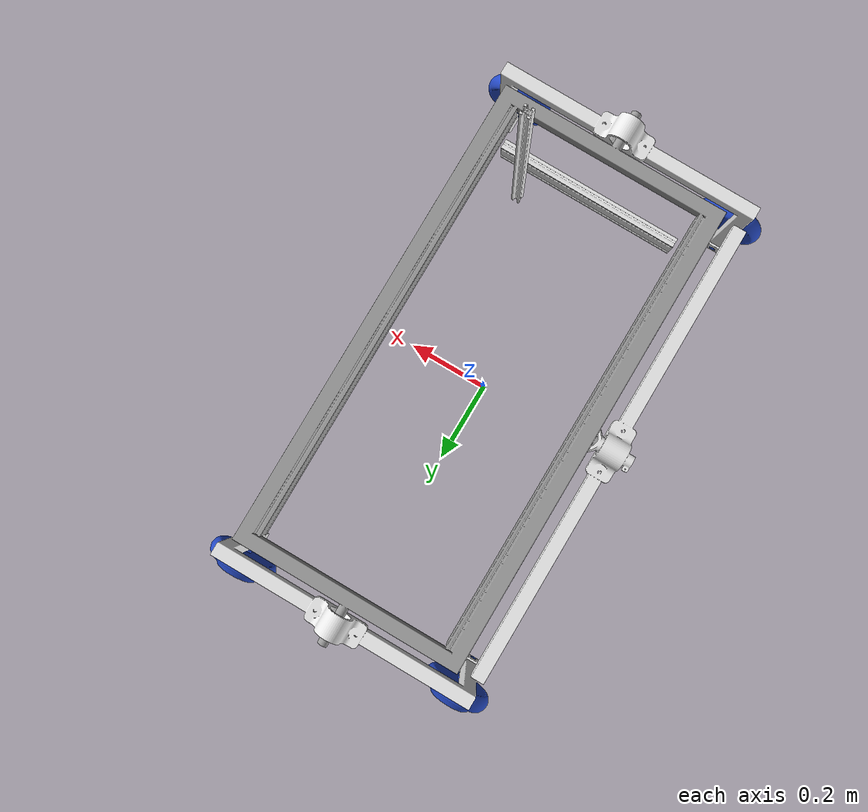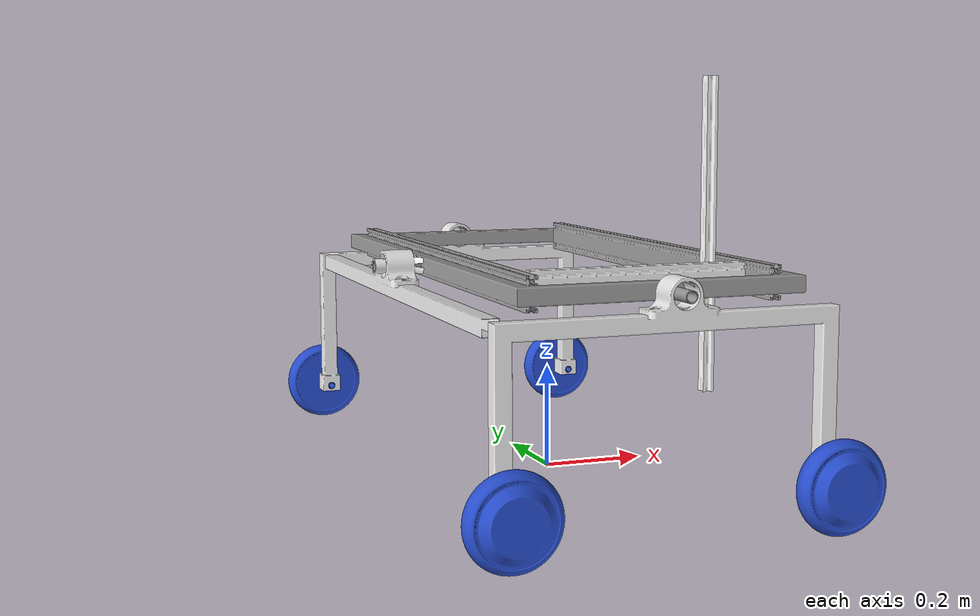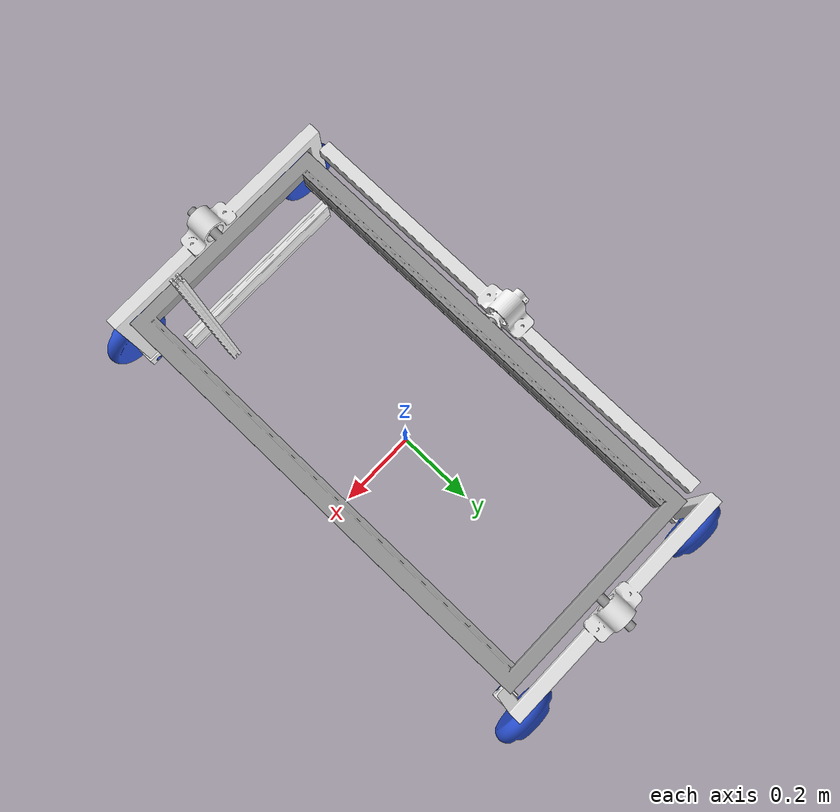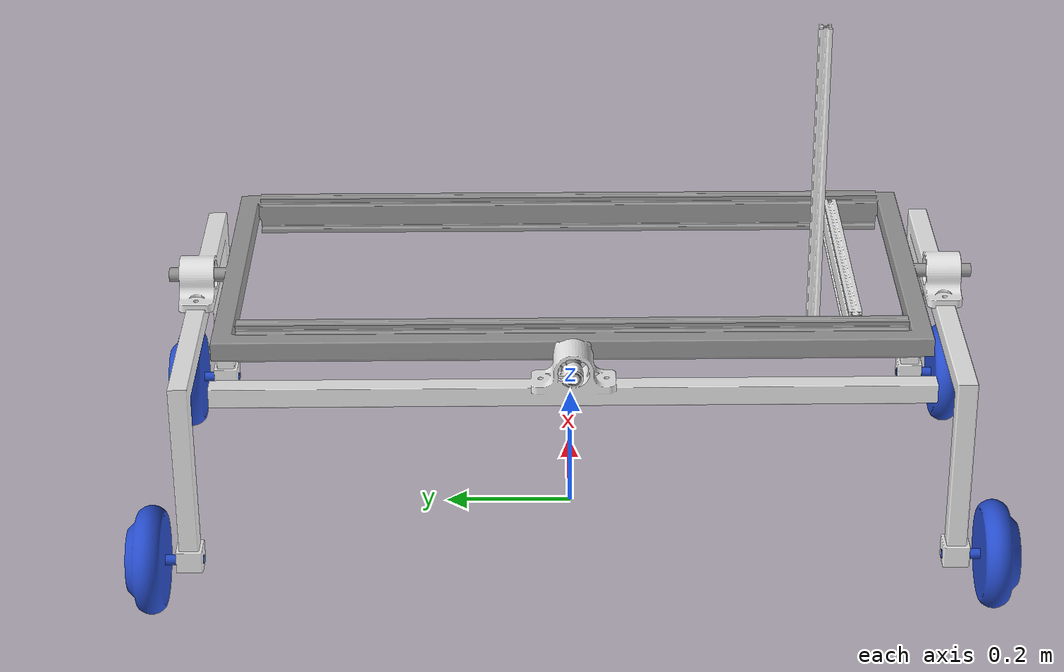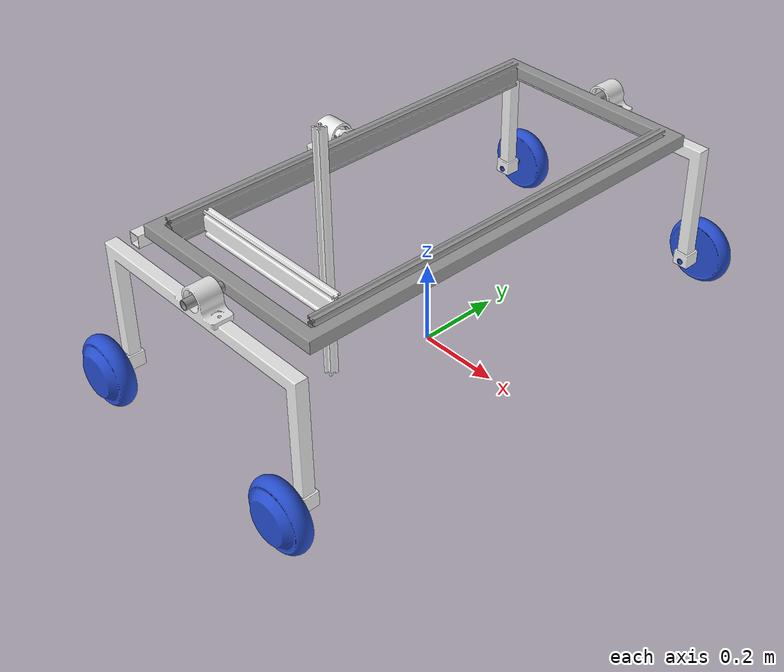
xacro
<?xml version="1.0"?>
<robot xmlns:xacro="http://www.ros.org/wiki/xacro" >

    <xacro:property name="frame_ground_offset" value="0.4125" />

    <xacro:property name="leg_offset_y" value="0.5795" />
    <xacro:property name="leg_offset_z" value="0.03" />

    <xacro:property name="back_bar_offset_x" value="0.305" />
    <xacro:property name="back_bar_offset_z" value="0.045" />

    <xacro:property name="front_wheel_offset_x" value="0.275" />
    <xacro:property name="back_wheel_offset_x" value="0.305" />
    <xacro:property name="wheel_offset_y" value="0.058" />
    <xacro:property name="wheel_offset_z" value="0.300" />

    <xacro:property name="z_axis_offset_x" value="0.025" />
    <xacro:property name="z_axis_offset_z" value="0.35" />

    <xacro:property name="x_axis_travel" value="0.845" />
    <xacro:property name="y_axis_travel" value="0.29" />
    <xacro:property name="z_axis_travel" value="0.25" />

    <xacro:property name="wheel_radius" value="0.0825" />
    <xacro:property name="wheel_width"  value="0.10"   />   <!-- tread width in Y (axle direction) -->

    ``----- LINKS -----

    <link name="base_footprint" />

    <link name="base_link">
        <visual>
            <geometry>
                <mesh filename="package://robot_description/meshes/main_frame.stl" scale="0.001 0.001 0.001" />
            </geometry>
            <origin xyz="0 0 0" rpy="0 0 0" />
            <material name="grey" />
        </visual>

        <collision>
            <origin xyz="0 0 0" rpy="0 0 0" />
            <geometry>
                <box size="0.614 1.338 0.06" />
            </geometry>
        </collision>

        <inertial>
            <origin xyz="0.0 0.0 0.0" rpy="0 0 0"/>
            <mass value="6.54888"/>
            <inertia
                ixx="0.9946" ixy="0.0" ixz="0.0"
                iyy="0.3190" iyz="0.0"
                izz="1.311" />
        </inertial>
    </link>

    <link name="gantry_origin_link"/>

    <link name="left_leg_link">
        <visual>
            <geometry>
                <mesh filename="package://robot_description/meshes/leg.stl" scale="0.001 0.001 0.001"/>
            </geometry>
            <origin xyz="0 0 0" rpy="0 0 0" />
            <material name="white" />
        </visual>

        <collision>
            <origin xyz="0 0 -0.15" rpy="0 0 0" />
            <geometry>
                <box size="0.625 0.054 0.37455" />
            </geometry>
        </collision>

        <inertial>
            <origin xyz="-0.014231 0.0 -0.143044" rpy="0 0 0"/>
            <mass value="2.33849"/>
            <inertia
                ixx="0.03813" ixy="0.0" ixz="0.0"
                iyy="0.1843" iyz="0.0"
                izz="0.1468" />
        </inertial>
    </link>

    <link name="right_leg_link">
        <visual>
            <geometry>
                <mesh filename="package://robot_description/meshes/leg.stl" scale="0.001 0.001 0.001"/>
            </geometry>
            <origin xyz="0 0 0" rpy="0 0 0" />
            <material name="white" />
        </visual>

        <collision>
            <origin xyz="0 0 -0.15" rpy="0 0 0" />
            <geometry>
                <box size="0.625 0.054 0.37455" />
            </geometry>
        </collision>

        <inertial>
            <origin xyz="-0.014231 0.0 -0.143044" rpy="0 0 0"/>
            <mass value="2.33849"/>
            <inertia
                ixx="0.03813" ixy="0.0" ixz="0.0"
                iyy="0.1843" iyz="0.0"
                izz="0.1468" />
        </inertial>
    </link>

    <link name="back_bar_link">
        <visual>
            <geometry>
                <mesh filename="package://robot_description/meshes/back_bar.stl" scale="0.001 0.001 0.001"/>
            </geometry>
            <origin xyz="0 0 0" rpy="0 0 0" />
            <material name="white" />
        </visual>

        <collision>
            <origin xyz="0 0 0.015" rpy="0 0 0" />
            <geometry>
                <box size="0.089 1.160 0.08955" />
            </geometry>
        </collision>

        <inertial>
            <origin xyz="0.0 0.0 0.007051" rpy="0 0 0"/>
            <mass value="1.16448"/>
            <inertia
                ixx="0.1067" ixy="0.0" ixz="0.0"
                iyy="0.0006767" iyz="0.0"
                izz="0.1064" />
        </inertial>
    </link>

    <link name="left_wheel_front_link">
        <visual>
            <geometry>
                <mesh filename="package://robot_description/meshes/motor_wheel.stl" scale="0.001 0.001 0.001"/>
            </geometry>
            <origin xyz="0 0 0" rpy="0 0 0" />
            <material name="blue" />
        </visual>

        <collision>
            <geometry>
                <sphere radius="${wheel_radius}"/>
            </geometry>
            <origin xyz="0 0 0" rpy="0 0 0" />
        </collision>

        <inertial>
            <origin xyz="0.0 -0.003705 0.0" rpy="0 0 0"/>

            <mass value="5.55023"/>

            <inertia
                ixx="0.01495" ixy="0.0" ixz="0.0"
                iyy="0.02667" iyz="0.0"
                izz="0.01495" />
        </inertial>
    </link>

    <link name="left_wheel_back_link">
        <visual>
            <geometry>
                <mesh filename="package://robot_description/meshes/motor_wheel.stl" scale="0.001 0.001 0.001"/>
            </geometry>
            <origin xyz="0 0 0" rpy="0 0 0" />
            <material name="blue" />
        </visual>

        <collision>
            <geometry>
                <sphere radius="${wheel_radius}"/>
            </geometry>
            <origin xyz="0 0 0" rpy="0 0 0" />
        </collision>

        <inertial>
            <origin xyz="0.0 -0.003705 0.0" rpy="0 0 0"/>

            <mass value="5.55023"/>

            <inertia
                ixx="0.01495" ixy="0.0" ixz="0.0"
                iyy="0.02667" iyz="0.0"
                izz="0.01495" />
        </inertial>
    </link>

    <link name="right_wheel_front_link">
        <visual>
            <geometry>
                <mesh filename="package://robot_description/meshes/motor_wheel.stl" scale="0.001 0.001 0.001"/>
            </geometry>
            <origin xyz="0 0 0" rpy="0 0 ${pi}" />
            <material name="blue" />
        </visual>

        <collision>
            <geometry>
                <sphere radius="${wheel_radius}"/>
            </geometry>
            <origin xyz="0 0 0" rpy="0 0 0" />
        </collision>

        <inertial>
            <origin xyz="0.0 0.003705 0.0" rpy="0 0 0"/>

            <mass value="5.55023"/>

            <inertia
                ixx="0.01495" ixy="0.0" ixz="0.0"
                iyy="0.02667" iyz="0.0"
                izz="0.01495" />
        </inertial>
    </link>

    <link name="right_wheel_back_link">
        <visual>
            <geometry>
                <mesh filename="package://robot_description/meshes/motor_wheel.stl" scale="0.001 0.001 0.001"/>
            </geometry>
            <origin xyz="0 0 0" rpy="0 0 ${pi}" />
            <material name="blue" />
        </visual>

        <collision>
            <geometry>
                <sphere radius="${wheel_radius}"/>
            </geometry>
            <origin xyz="0 0 0" rpy="0 0 0" />
        </collision>

        <inertial>
            <origin xyz="0.0 0.003705 0.0" rpy="0 0 0"/>

            <mass value="5.55023"/>

            <inertia
                ixx="0.01495" ixy="0.0" ixz="0.0"
                iyy="0.02667" iyz="0.0"
                izz="0.01495" />
        </inertial>
    </link>

    <link name="y_axis_link">
        <visual>
            <geometry>
                <mesh filename="package://robot_description/meshes/y_axis.stl" scale="0.001 0.001 0.001"/>
            </geometry>
            <origin xyz="0 -0.055 0" rpy="0 0 0" />
            <material name="white" />
        </visual>

        <collision>
            <origin xyz="0 0 0" rpy="0 0 0" />
            <geometry>
                <box size="0.4 0.02 0.06" />
            </geometry>
        </collision>

        <inertial>
            <origin xyz="0.0 0.0 0.0" rpy="0 0 0"/>
            <mass value="0.37599"/>
            <inertia
                ixx="0.0001717" ixy="0.0" ixz="0.0"
                iyy="0.005167"  iyz="0.0"
                izz="0.005032" />
        </inertial>
    </link>

    <link name="z_carriage_link">
        <inertial>
            <mass value="0.001" />
            <inertia ixx="0.0001" ixy="0" ixz="0" iyy="0.0001" iyz="0" izz="0.0001" />
        </inertial>
    </link>

    <link name="z_axis_link">
        <visual>
            <geometry>
                <mesh filename="package://robot_description/meshes/z_axis.stl" scale="0.001 0.001 0.001"/>
            </geometry>
            <origin xyz="0 0 0" rpy="0 0 0" />
            <material name="white" />
        </visual>

        <collision>
            <origin xyz="0 0 0.275" rpy="0 0 0" />
            <geometry>
                <box size="0.0195 0.0195 0.55" />
            </geometry>
        </collision>

        <inertial>
            <origin xyz="0.0 0.0 0.275" rpy="0 0 0"/>
            <mass value="0.23431"/>
            <inertia
                ixx="0.005916" ixy="0.0" ixz="0.0"
                iyy="0.005916" iyz="0.0"
                izz="0.00001918" />
        </inertial>
    </link>

    ``----- JOINTS -----

    <joint name="base_joint" type="fixed">
        <parent link="base_footprint" />
        <child link="base_link" />
        <origin xyz="0 0 ${frame_ground_offset}" rpy="0 0 0" />
    </joint>

    <joint name="gantry_origin_joint" type="fixed">
        <parent link="base_link"/>
        <child link="gantry_origin_link"/>
        <origin xyz="${y_axis_travel/2} ${-x_axis_travel/2} 0" rpy="0 0 ${pi/2}"/>
    </joint>

    <joint name="base_left_leg_joint" type="fixed">
        <parent link="base_link" />
        <child link="left_leg_link" />
        <origin xyz="0 ${-leg_offset_y} ${-leg_offset_z}" rpy="0 0 0" />
    </joint>

    <joint name="base_right_leg_joint" type="fixed">
        <parent link="base_link" />
        <child link="right_leg_link" />
        <origin xyz="0 ${leg_offset_y} ${-leg_offset_z}" rpy="0 0 0" />
    </joint>

    <joint name="base_back_bar_joint" type="fixed">
        <parent link="base_link" />
        <child link="back_bar_link" />
        <origin xyz="${-back_bar_offset_x} 0 ${-back_bar_offset_z}" rpy="0 0 0" />
    </joint>

    <joint name="left_leg_front_wheel_joint" type="continuous">
        <parent link="left_leg_link" />
        <child link="left_wheel_front_link" />
        <origin xyz="${front_wheel_offset_x} ${-wheel_offset_y} ${-wheel_offset_z}" rpy="0 0 0" />
        <axis xyz="0 1 0" rpy="0 0 0" />
    </joint>

    <joint name="left_leg_back_wheel_joint" type="continuous">
        <parent link="left_leg_link" />
        <child link="left_wheel_back_link" />
        <origin xyz="${-back_wheel_offset_x} ${-wheel_offset_y} ${-wheel_offset_z}" rpy="0 0 0" />
        <axis xyz="0 1 0" rpy="0 0 0" />
    </joint>

    <joint name="right_leg_front_wheel_joint" type="continuous">
        <parent link="right_leg_link" />
        <child link="right_wheel_front_link" />
        <origin xyz="${front_wheel_offset_x} ${wheel_offset_y} ${-wheel_offset_z}" rpy="0 0 0" />
        <axis xyz="0 1 0" rpy="0 0 0" />
    </joint>

    <joint name="right_leg_back_wheel_joint" type="continuous">
        <parent link="right_leg_link" />
        <child link="right_wheel_back_link" />
        <origin xyz="${-back_wheel_offset_x} ${wheel_offset_y} ${-wheel_offset_z}" rpy="0 0 0" />
        <axis xyz="0 1 0" rpy="0 0 0" />
    </joint>

    <joint name="x_axis_joint" type="prismatic">
        <parent link="gantry_origin_link" />
        <child link="y_axis_link" />
        <origin xyz="0 0 0" rpy="0 0 0" />
        <axis xyz="1 0 0" rpy="0 0 0" />
        <limit lower="-0.005" upper="${x_axis_travel}" velocity="0.15" effort="100" />
    </joint>

    <joint name="y_axis_joint" type="prismatic">
        <parent link="y_axis_link" />
        <child link="z_carriage_link" />
        <origin xyz="${z_axis_offset_x} 0 ${z_axis_offset_z}" rpy="0 0 0" />
        <axis xyz="0 1 0" rpy="0 0 0" />
        <limit lower="-0.005" upper="${y_axis_travel}" velocity="0.038" effort="100" />
    </joint>

    <joint name="z_axis_joint" type="prismatic">
        <parent link="z_carriage_link" />
        <child link="z_axis_link" />
        <origin xyz="0 0 0" rpy="${pi} 0 0" />
        <axis xyz="0 0 1" rpy="0 0 0" />
        <limit lower="-0.005" upper="${z_axis_travel}" velocity="0.038" effort="100" />
    </joint>

</robot>
